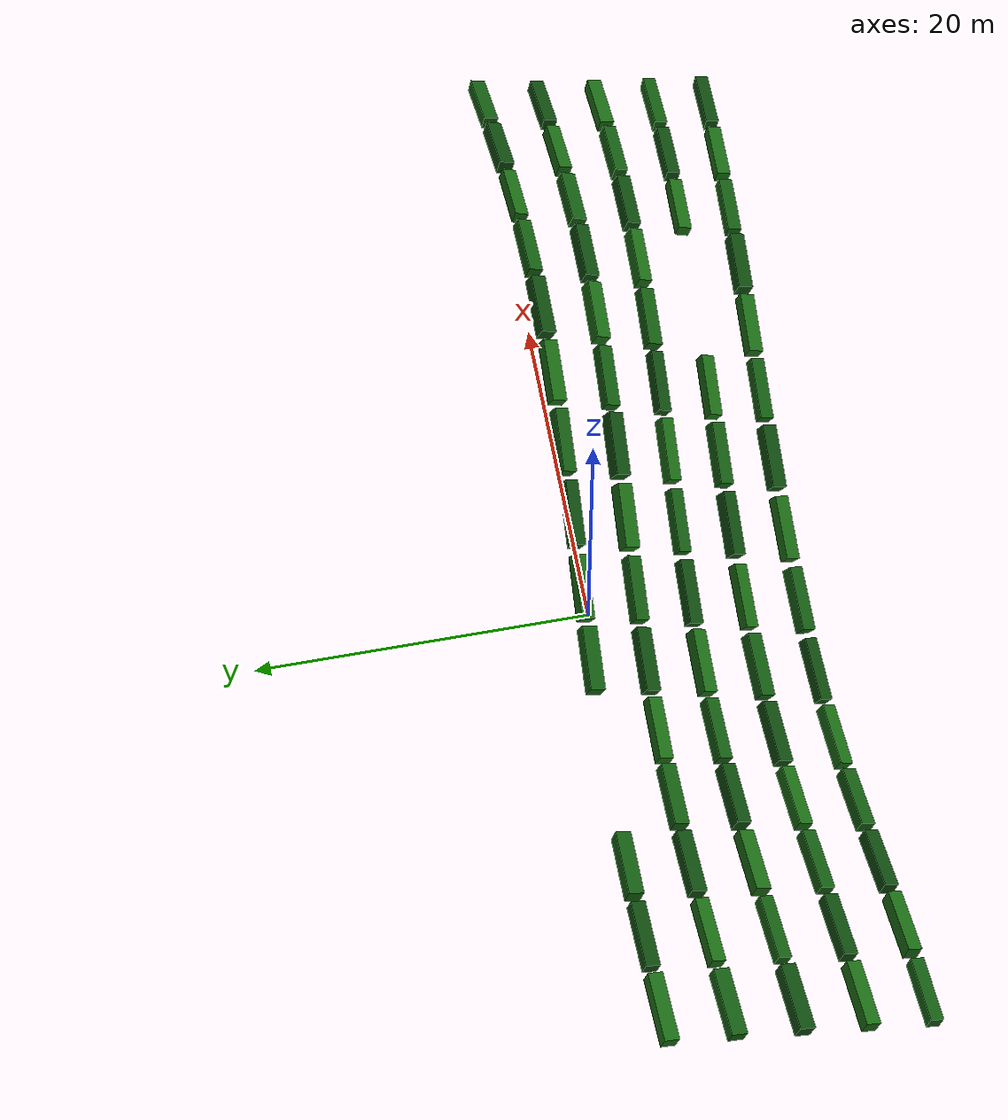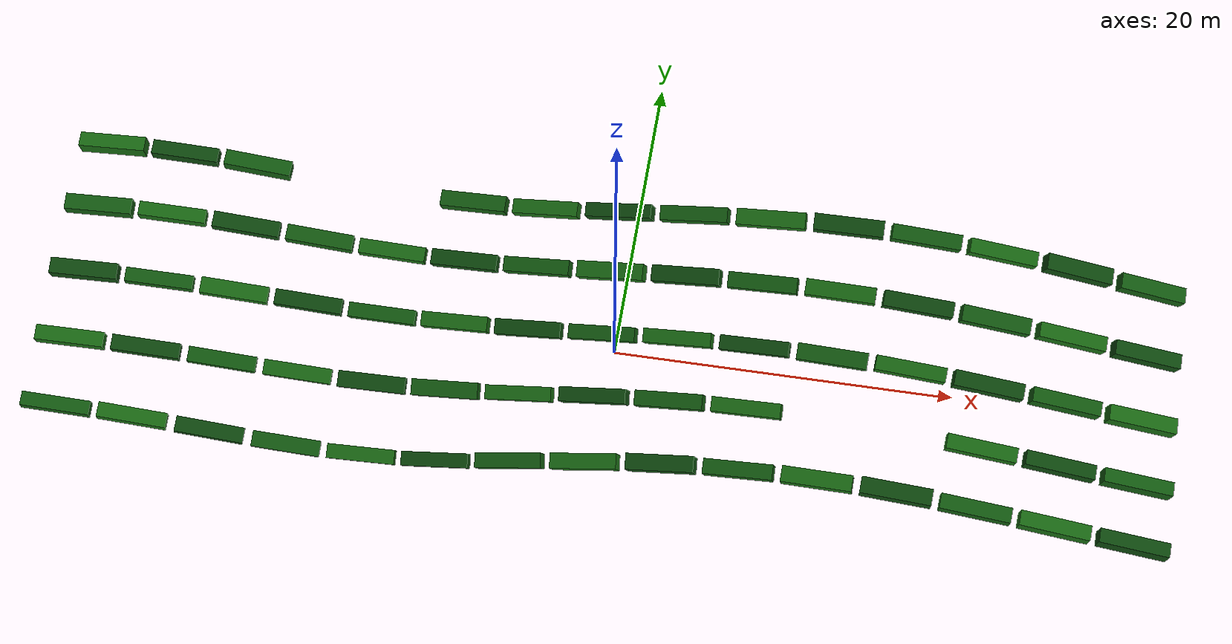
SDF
<sdf version="1.6">
 <world name="mountain_tea_garden_80m">
  <model name="tea_row_04">
   <static>true</static>
   <link name="bush_00">
    <pose>-29 -12.6174 7.43302 0.305582 0.109282 0.0435142</pose>
    <collision name="collision">
     <geometry><box><size>3.75 0.766584 0.74332</size></box></geometry>
     <laser_retro>55</laser_retro>
     <surface><friction><ode><mu>1.15</mu><mu2>1.15</mu2></ode></friction></surface>
    </collision>
    <visual name="visual">
     <geometry><box><size>3.75 0.766584 0.74332</size></box></geometry>
     <material>
      <ambient>0.075 0.36 0.065 1</ambient>
      <diffuse>0.075 0.36 0.065 1</diffuse>
      <specular>0.05 0.05 0.05 1</specular>
     </material>
    </visual>
   </link>
   <link name="bush_01">
    <pose>-24.85 -12.4072 6.91401 0.344056 0.174651 0.0565617</pose>
    <collision name="collision">
     <geometry><box><size>3.75 0.810689 0.898538</size></box></geometry>
     <laser_retro>55</laser_retro>
     <surface><friction><ode><mu>1.15</mu><mu2>1.15</mu2></ode></friction></surface>
    </collision>
    <visual name="visual">
     <geometry><box><size>3.75 0.810689 0.898538</size></box></geometry>
     <material>
      <ambient>0.1 0.42 0.075 1</ambient>
      <diffuse>0.1 0.42 0.075 1</diffuse>
      <specular>0.05 0.05 0.05 1</specular>
     </material>
    </visual>
   </link>
   <link name="bush_02">
    <pose>-20.7 -12.1575 6.05709 0.396059 0.207144 0.0623276</pose>
    <collision name="collision">
     <geometry><box><size>3.75 0.842947 0.834821</size></box></geometry>
     <laser_retro>55</laser_retro>
     <surface><friction><ode><mu>1.15</mu><mu2>1.15</mu2></ode></friction></surface>
    </collision>
    <visual name="visual">
     <geometry><box><size>3.75 0.842947 0.834821</size></box></geometry>
     <material>
      <ambient>0.055 0.29 0.055 1</ambient>
      <diffuse>0.055 0.29 0.055 1</diffuse>
      <specular>0.05 0.05 0.05 1</specular>
     </material>
    </visual>
   </link>
   <link name="bush_03">
    <pose>-16.55 -11.9004 5.22984 0.446021 0.159475 0.060083</pose>
    <collision name="collision">
     <geometry><box><size>3.75 0.8618 0.790554</size></box></geometry>
     <laser_retro>55</laser_retro>
     <surface><friction><ode><mu>1.15</mu><mu2>1.15</mu2></ode></friction></surface>
    </collision>
    <visual name="visual">
     <geometry><box><size>3.75 0.8618 0.790554</size></box></geometry>
     <material>
      <ambient>0.075 0.36 0.065 1</ambient>
      <diffuse>0.075 0.36 0.065 1</diffuse>
      <specular>0.05 0.05 0.05 1</specular>
     </material>
    </visual>
   </link>
   <link name="bush_04">
    <pose>-12.4 -11.669 4.81229 0.474228 0.0256147 0.0501111</pose>
    <collision name="collision">
     <geometry><box><size>3.75 0.792793 0.775226</size></box></geometry>
     <laser_retro>55</laser_retro>
     <surface><friction><ode><mu>1.15</mu><mu2>1.15</mu2></ode></friction></surface>
    </collision>
    <visual name="visual">
     <geometry><box><size>3.75 0.792793 0.775226</size></box></geometry>
     <material>
      <ambient>0.1 0.42 0.075 1</ambient>
      <diffuse>0.1 0.42 0.075 1</diffuse>
      <specular>0.05 0.05 0.05 1</specular>
     </material>
    </visual>
   </link>
   <link name="bush_05">
    <pose>-8.25 -11.4931 5.01506 0.471432 -0.133204 0.0336773</pose>
    <collision name="collision">
     <geometry><box><size>3.75 0.782553 0.71841</size></box></geometry>
     <laser_retro>55</laser_retro>
     <surface><friction><ode><mu>1.15</mu><mu2>1.15</mu2></ode></friction></surface>
    </collision>
    <visual name="visual">
     <geometry><box><size>3.75 0.782553 0.71841</size></box></geometry>
     <material>
      <ambient>0.055 0.29 0.055 1</ambient>
      <diffuse>0.055 0.29 0.055 1</diffuse>
      <specular>0.05 0.05 0.05 1</specular>
     </material>
    </visual>
   </link>
   <link name="bush_06">
    <pose>-4.1 -11.3954 5.88602 0.445157 -0.237608 0.0128864</pose>
    <collision name="collision">
     <geometry><box><size>3.75 0.819698 0.844646</size></box></geometry>
     <laser_retro>55</laser_retro>
     <surface><friction><ode><mu>1.15</mu><mu2>1.15</mu2></ode></friction></surface>
    </collision>
    <visual name="visual">
     <geometry><box><size>3.75 0.819698 0.844646</size></box></geometry>
     <material>
      <ambient>0.075 0.36 0.065 1</ambient>
      <diffuse>0.075 0.36 0.065 1</diffuse>
      <specular>0.05 0.05 0.05 1</specular>
     </material>
    </visual>
   </link>
   <link name="bush_07">
    <pose>0.05 -11.3885 6.92263 0.412634 -0.261757 -0.00957563</pose>
    <collision name="collision">
     <geometry><box><size>3.75 0.843659 0.745857</size></box></geometry>
     <laser_retro>55</laser_retro>
     <surface><friction><ode><mu>1.15</mu><mu2>1.15</mu2></ode></friction></surface>
    </collision>
    <visual name="visual">
     <geometry><box><size>3.75 0.843659 0.745857</size></box></geometry>
     <material>
      <ambient>0.1 0.42 0.075 1</ambient>
      <diffuse>0.1 0.42 0.075 1</diffuse>
      <specular>0.05 0.05 0.05 1</specular>
     </material>
    </visual>
   </link>
   <link name="bush_08">
    <pose>4.2 -11.4732 8.00346 0.386311 -0.225794 -0.0307957</pose>
    <collision name="collision">
     <geometry><box><size>3.75 0.877888 0.809632</size></box></geometry>
     <laser_retro>55</laser_retro>
     <surface><friction><ode><mu>1.15</mu><mu2>1.15</mu2></ode></friction></surface>
    </collision>
    <visual name="visual">
     <geometry><box><size>3.75 0.877888 0.809632</size></box></geometry>
     <material>
      <ambient>0.055 0.29 0.055 1</ambient>
      <diffuse>0.055 0.29 0.055 1</diffuse>
      <specular>0.05 0.05 0.05 1</specular>
     </material>
    </visual>
   </link>
   <link name="bush_09">
    <pose>8.35 -11.6386 8.77087 0.365482 -0.159347 -0.0480296</pose>
    <collision name="collision">
     <geometry><box><size>3.75 0.814928 0.711231</size></box></geometry>
     <laser_retro>55</laser_retro>
     <surface><friction><ode><mu>1.15</mu><mu2>1.15</mu2></ode></friction></surface>
    </collision>
    <visual name="visual">
     <geometry><box><size>3.75 0.814928 0.711231</size></box></geometry>
     <material>
      <ambient>0.075 0.36 0.065 1</ambient>
      <diffuse>0.075 0.36 0.065 1</diffuse>
      <specular>0.05 0.05 0.05 1</specular>
     </material>
    </visual>
   </link>
   <link name="bush_10">
    <pose>12.5 -11.8635 9.30513 0.341509 -0.0831501 -0.059067</pose>
    <collision name="collision">
     <geometry><box><size>3.75 0.860232 0.764457</size></box></geometry>
     <laser_retro>55</laser_retro>
     <surface><friction><ode><mu>1.15</mu><mu2>1.15</mu2></ode></friction></surface>
    </collision>
    <visual name="visual">
     <geometry><box><size>3.75 0.860232 0.764457</size></box></geometry>
     <material>
      <ambient>0.1 0.42 0.075 1</ambient>
      <diffuse>0.1 0.42 0.075 1</diffuse>
      <specular>0.05 0.05 0.05 1</specular>
     </material>
    </visual>
   </link>
   <link name="bush_11">
    <pose>16.65 -12.1189 9.55475 0.307985 -0.0087749 -0.0625056</pose>
    <collision name="collision">
     <geometry><box><size>3.75 0.882073 0.885307</size></box></geometry>
     <laser_retro>55</laser_retro>
     <surface><friction><ode><mu>1.15</mu><mu2>1.15</mu2></ode></friction></surface>
    </collision>
    <visual name="visual">
     <geometry><box><size>3.75 0.882073 0.885307</size></box></geometry>
     <material>
      <ambient>0.055 0.29 0.055 1</ambient>
      <diffuse>0.055 0.29 0.055 1</diffuse>
      <specular>0.05 0.05 0.05 1</specular>
     </material>
    </visual>
   </link>
   <link name="bush_12">
    <pose>20.8 -12.3718 9.36862 0.265576 0.0556531 -0.0579112</pose>
    <collision name="collision">
     <geometry><box><size>3.75 0.815526 0.71751</size></box></geometry>
     <laser_retro>55</laser_retro>
     <surface><friction><ode><mu>1.15</mu><mu2>1.15</mu2></ode></friction></surface>
    </collision>
    <visual name="visual">
     <geometry><box><size>3.75 0.815526 0.71751</size></box></geometry>
     <material>
      <ambient>0.075 0.36 0.065 1</ambient>
      <diffuse>0.075 0.36 0.065 1</diffuse>
      <specular>0.05 0.05 0.05 1</specular>
     </material>
    </visual>
   </link>
   <link name="bush_13">
    <pose>24.95 -12.5897 9.05079 0.220553 0.103441 -0.0458643</pose>
    <collision name="collision">
     <geometry><box><size>3.75 0.816914 0.757991</size></box></geometry>
     <laser_retro>55</laser_retro>
     <surface><friction><ode><mu>1.15</mu><mu2>1.15</mu2></ode></friction></surface>
    </collision>
    <visual name="visual">
     <geometry><box><size>3.75 0.816914 0.757991</size></box></geometry>
     <material>
      <ambient>0.1 0.42 0.075 1</ambient>
      <diffuse>0.1 0.42 0.075 1</diffuse>
      <specular>0.05 0.05 0.05 1</specular>
     </material>
    </visual>
   </link>
   <link name="bush_14">
    <pose>29.1 -12.7445 8.59119 0.180692 0.130278 -0.0278974</pose>
    <collision name="collision">
     <geometry><box><size>3.75 0.771189 0.829505</size></box></geometry>
     <laser_retro>55</laser_retro>
     <surface><friction><ode><mu>1.15</mu><mu2>1.15</mu2></ode></friction></surface>
    </collision>
    <visual name="visual">
     <geometry><box><size>3.75 0.771189 0.829505</size></box></geometry>
     <material>
      <ambient>0.055 0.29 0.055 1</ambient>
      <diffuse>0.055 0.29 0.055 1</diffuse>
      <specular>0.05 0.05 0.05 1</specular>
     </material>
    </visual>
   </link>
  </model>
  <model name="tea_row_05">
   <static>true</static>
   <link name="bush_00">
    <pose>-29 -9.01153 8.66435 0.332981 0.0763519 0.0582663</pose>
    <collision name="collision">
     <geometry><box><size>3.75 0.828919 0.834383</size></box></geometry>
     <laser_retro>55</laser_retro>
     <surface><friction><ode><mu>1.15</mu><mu2>1.15</mu2></ode></friction></surface>
    </collision>
    <visual name="visual">
     <geometry><box><size>3.75 0.828919 0.834383</size></box></geometry>
     <material>
      <ambient>0.1 0.42 0.075 1</ambient>
      <diffuse>0.1 0.42 0.075 1</diffuse>
      <specular>0.05 0.05 0.05 1</specular>
     </material>
    </visual>
   </link>
   <link name="bush_01">
    <pose>-24.85 -8.75783 8.21373 0.373006 0.130674 0.0625234</pose>
    <collision name="collision">
     <geometry><box><size>3.75 0.838566 0.80109</size></box></geometry>
     <laser_retro>55</laser_retro>
     <surface><friction><ode><mu>1.15</mu><mu2>1.15</mu2></ode></friction></surface>
    </collision>
    <visual name="visual">
     <geometry><box><size>3.75 0.838566 0.80109</size></box></geometry>
     <material>
      <ambient>0.055 0.29 0.055 1</ambient>
      <diffuse>0.055 0.29 0.055 1</diffuse>
      <specular>0.05 0.05 0.05 1</specular>
     </material>
    </visual>
   </link>
   <link name="bush_02">
    <pose>-20.7 -8.50311 7.57428 0.41719 0.157665 0.0587452</pose>
    <collision name="collision">
     <geometry><box><size>3.75 0.828921 0.764522</size></box></geometry>
     <laser_retro>55</laser_retro>
     <surface><friction><ode><mu>1.15</mu><mu2>1.15</mu2></ode></friction></surface>
    </collision>
    <visual name="visual">
     <geometry><box><size>3.75 0.828921 0.764522</size></box></geometry>
     <material>
      <ambient>0.075 0.36 0.065 1</ambient>
      <diffuse>0.075 0.36 0.065 1</diffuse>
      <specular>0.05 0.05 0.05 1</specular>
     </material>
    </visual>
   </link>
   <link name="bush_03">
    <pose>-16.55 -8.28021 6.96298 0.455793 0.12025 0.047409</pose>
    <collision name="collision">
     <geometry><box><size>3.75 0.829983 0.757244</size></box></geometry>
     <laser_retro>55</laser_retro>
     <surface><friction><ode><mu>1.15</mu><mu2>1.15</mu2></ode></friction></surface>
    </collision>
    <visual name="visual">
     <geometry><box><size>3.75 0.829983 0.757244</size></box></geometry>
     <material>
      <ambient>0.1 0.42 0.075 1</ambient>
      <diffuse>0.1 0.42 0.075 1</diffuse>
      <specular>0.05 0.05 0.05 1</specular>
     </material>
    </visual>
   </link>
   <link name="bush_04">
    <pose>-12.4 -8.11782 6.65427 0.479019 0.0166306 0.0299554</pose>
    <collision name="collision">
     <geometry><box><size>3.75 0.893402 0.745273</size></box></geometry>
     <laser_retro>55</laser_retro>
     <surface><friction><ode><mu>1.15</mu><mu2>1.15</mu2></ode></friction></surface>
    </collision>
    <visual name="visual">
     <geometry><box><size>3.75 0.893402 0.745273</size></box></geometry>
     <material>
      <ambient>0.055 0.29 0.055 1</ambient>
      <diffuse>0.055 0.29 0.055 1</diffuse>
      <specular>0.05 0.05 0.05 1</specular>
     </material>
    </visual>
   </link>
   <link name="bush_05">
    <pose>-8.25 -8.03686 6.86164 0.482901 -0.108174 0.00862402</pose>
    <collision name="collision">
     <geometry><box><size>3.75 0.892415 0.772042</size></box></geometry>
     <laser_retro>55</laser_retro>
     <surface><friction><ode><mu>1.15</mu><mu2>1.15</mu2></ode></friction></surface>
    </collision>
    <visual name="visual">
     <geometry><box><size>3.75 0.892415 0.772042</size></box></geometry>
     <material>
      <ambient>0.075 0.36 0.065 1</ambient>
      <diffuse>0.075 0.36 0.065 1</diffuse>
      <specular>0.05 0.05 0.05 1</specular>
     </material>
    </visual>
   </link>
   <link name="bush_06">
    <pose>-4.1 -8.04778 7.49528 0.472052 -0.197066 -0.013826</pose>
    <collision name="collision">
     <geometry><box><size>3.75 0.778742 0.721932</size></box></geometry>
     <laser_retro>55</laser_retro>
     <surface><friction><ode><mu>1.15</mu><mu2>1.15</mu2></ode></friction></surface>
    </collision>
    <visual name="visual">
     <geometry><box><size>3.75 0.778742 0.721932</size></box></geometry>
     <material>
      <ambient>0.1 0.42 0.075 1</ambient>
      <diffuse>0.1 0.42 0.075 1</diffuse>
      <specular>0.05 0.05 0.05 1</specular>
     </material>
    </visual>
   </link>
   <link name="bush_07">
    <pose>0.05 -8.14915 8.49277 0.455843 -0.224978 -0.0344832</pose>
    <collision name="collision">
     <geometry><box><size>3.75 0.783647 0.89375</size></box></geometry>
     <laser_retro>55</laser_retro>
     <surface><friction><ode><mu>1.15</mu><mu2>1.15</mu2></ode></friction></surface>
    </collision>
    <visual name="visual">
     <geometry><box><size>3.75 0.783647 0.89375</size></box></geometry>
     <material>
      <ambient>0.055 0.29 0.055 1</ambient>
      <diffuse>0.055 0.29 0.055 1</diffuse>
      <specular>0.05 0.05 0.05 1</specular>
     </material>
    </visual>
   </link>
   <link name="bush_08">
    <pose>4.2 -8.32793 9.35848 0.440188 -0.199049 -0.0506795</pose>
    <collision name="collision">
     <geometry><box><size>3.75 0.824155 0.804143</size></box></geometry>
     <laser_retro>55</laser_retro>
     <surface><friction><ode><mu>1.15</mu><mu2>1.15</mu2></ode></friction></surface>
    </collision>
    <visual name="visual">
     <geometry><box><size>3.75 0.824155 0.804143</size></box></geometry>
     <material>
      <ambient>0.075 0.36 0.065 1</ambient>
      <diffuse>0.075 0.36 0.065 1</diffuse>
      <specular>0.05 0.05 0.05 1</specular>
     </material>
    </visual>
   </link>
   <link name="bush_09">
    <pose>8.35 -8.56107 10.0421 0.42292 -0.137972 -0.0603415</pose>
    <collision name="collision">
     <geometry><box><size>3.75 0.780971 0.738457</size></box></geometry>
     <laser_retro>55</laser_retro>
     <surface><friction><ode><mu>1.15</mu><mu2>1.15</mu2></ode></friction></surface>
    </collision>
    <visual name="visual">
     <geometry><box><size>3.75 0.780971 0.738457</size></box></geometry>
     <material>
      <ambient>0.1 0.42 0.075 1</ambient>
      <diffuse>0.1 0.42 0.075 1</diffuse>
      <specular>0.05 0.05 0.05 1</specular>
     </material>
    </visual>
   </link>
   <link name="bush_12">
    <pose>20.8 -9.275 10.2963 0.311186 0.0890776 -0.0428192</pose>
    <collision name="collision">
     <geometry><box><size>3.75 0.8097 0.718613</size></box></geometry>
     <laser_retro>55</laser_retro>
     <surface><friction><ode><mu>1.15</mu><mu2>1.15</mu2></ode></friction></surface>
    </collision>
    <visual name="visual">
     <geometry><box><size>3.75 0.8097 0.718613</size></box></geometry>
     <material>
      <ambient>0.1 0.42 0.075 1</ambient>
      <diffuse>0.1 0.42 0.075 1</diffuse>
      <specular>0.05 0.05 0.05 1</specular>
     </material>
    </visual>
   </link>
   <link name="bush_13">
    <pose>24.95 -9.41516 9.85978 0.258136 0.137578 -0.0239619</pose>
    <collision name="collision">
     <geometry><box><size>3.75 0.788365 0.807719</size></box></geometry>
     <laser_retro>55</laser_retro>
     <surface><friction><ode><mu>1.15</mu><mu2>1.15</mu2></ode></friction></surface>
    </collision>
    <visual name="visual">
     <geometry><box><size>3.75 0.788365 0.807719</size></box></geometry>
     <material>
      <ambient>0.055 0.29 0.055 1</ambient>
      <diffuse>0.055 0.29 0.055 1</diffuse>
      <specular>0.05 0.05 0.05 1</specular>
     </material>
    </visual>
   </link>
   <link name="bush_14">
    <pose>29.1 -9.46963 9.24359 0.208087 0.160477 -0.00200027</pose>
    <collision name="collision">
     <geometry><box><size>3.75 0.760202 0.840672</size></box></geometry>
     <laser_retro>55</laser_retro>
     <surface><friction><ode><mu>1.15</mu><mu2>1.15</mu2></ode></friction></surface>
    </collision>
    <visual name="visual">
     <geometry><box><size>3.75 0.760202 0.840672</size></box></geometry>
     <material>
      <ambient>0.075 0.36 0.065 1</ambient>
      <diffuse>0.075 0.36 0.065 1</diffuse>
      <specular>0.05 0.05 0.05 1</specular>
     </material>
    </visual>
   </link>
  </model>
  <model name="tea_row_06">
   <static>true</static>
   <link name="bush_00">
    <pose>-29 -5.35808 9.92413 0.32508 0.0426114 0.0624213</pose>
    <collision name="collision">
     <geometry><box><size>3.75 0.88708 0.868074</size></box></geometry>
     <laser_retro>55</laser_retro>
     <surface><friction><ode><mu>1.15</mu><mu2>1.15</mu2></ode></friction></surface>
    </collision>
    <visual name="visual">
     <geometry><box><size>3.75 0.88708 0.868074</size></box></geometry>
     <material>
      <ambient>0.055 0.29 0.055 1</ambient>
      <diffuse>0.055 0.29 0.055 1</diffuse>
      <specular>0.05 0.05 0.05 1</specular>
     </material>
    </visual>
   </link>
   <link name="bush_01">
    <pose>-24.85 -5.10698 9.56713 0.361047 0.0961348 0.0571273</pose>
    <collision name="collision">
     <geometry><box><size>3.75 0.778398 0.733192</size></box></geometry>
     <laser_retro>55</laser_retro>
     <surface><friction><ode><mu>1.15</mu><mu2>1.15</mu2></ode></friction></surface>
    </collision>
    <visual name="visual">
     <geometry><box><size>3.75 0.778398 0.733192</size></box></geometry>
     <material>
      <ambient>0.075 0.36 0.065 1</ambient>
      <diffuse>0.075 0.36 0.065 1</diffuse>
      <specular>0.05 0.05 0.05 1</specular>
     </material>
    </visual>
   </link>
   <link name="bush_02">
    <pose>-20.7 -4.89364 9.09686 0.392419 0.126406 0.04448</pose>
    <collision name="collision">
     <geometry><box><size>3.75 0.891198 0.75271</size></box></geometry>
     <laser_retro>55</laser_retro>
     <surface><friction><ode><mu>1.15</mu><mu2>1.15</mu2></ode></friction></surface>
    </collision>
    <visual name="visual">
     <geometry><box><size>3.75 0.891198 0.75271</size></box></geometry>
     <material>
      <ambient>0.1 0.42 0.075 1</ambient>
      <diffuse>0.1 0.42 0.075 1</diffuse>
      <specular>0.05 0.05 0.05 1</specular>
     </material>
    </visual>
   </link>
   <link name="bush_03">
    <pose>-16.55 -4.74552 8.66856 0.417419 0.0984729 0.0260896</pose>
    <collision name="collision">
     <geometry><box><size>3.75 0.846375 0.880867</size></box></geometry>
     <laser_retro>55</laser_retro>
     <surface><friction><ode><mu>1.15</mu><mu2>1.15</mu2></ode></friction></surface>
    </collision>
    <visual name="visual">
     <geometry><box><size>3.75 0.846375 0.880867</size></box></geometry>
     <material>
      <ambient>0.055 0.29 0.055 1</ambient>
      <diffuse>0.055 0.29 0.055 1</diffuse>
      <specular>0.05 0.05 0.05 1</specular>
     </material>
    </visual>
   </link>
   <link name="bush_04">
    <pose>-12.4 -4.68172 8.37453 0.437177 0.0114922 0.00432012</pose>
    <collision name="collision">
     <geometry><box><size>3.75 0.796453 0.781668</size></box></geometry>
     <laser_retro>55</laser_retro>
     <surface><friction><ode><mu>1.15</mu><mu2>1.15</mu2></ode></friction></surface>
    </collision>
    <visual name="visual">
     <geometry><box><size>3.75 0.796453 0.781668</size></box></geometry>
     <material>
      <ambient>0.075 0.36 0.065 1</ambient>
      <diffuse>0.075 0.36 0.065 1</diffuse>
      <specular>0.05 0.05 0.05 1</specular>
     </material>
    </visual>
   </link>
   <link name="bush_05">
    <pose>-8.25 -4.71044 8.58554 0.452339 -0.0964584 -0.0180099</pose>
    <collision name="collision">
     <geometry><box><size>3.75 0.814239 0.847049</size></box></geometry>
     <laser_retro>55</laser_retro>
     <surface><friction><ode><mu>1.15</mu><mu2>1.15</mu2></ode></friction></surface>
    </collision>
    <visual name="visual">
     <geometry><box><size>3.75 0.814239 0.847049</size></box></geometry>
     <material>
      <ambient>0.1 0.42 0.075 1</ambient>
      <diffuse>0.1 0.42 0.075 1</diffuse>
      <specular>0.05 0.05 0.05 1</specular>
     </material>
    </visual>
   </link>
   <link name="bush_06">
    <pose>-4.1 -4.82799 9.10343 0.462746 -0.177779 -0.0380052</pose>
    <collision name="collision">
     <geometry><box><size>3.75 0.845128 0.704892</size></box></geometry>
     <laser_retro>55</laser_retro>
     <surface><friction><ode><mu>1.15</mu><mu2>1.15</mu2></ode></friction></surface>
    </collision>
    <visual name="visual">
     <geometry><box><size>3.75 0.845128 0.704892</size></box></geometry>
     <material>
      <ambient>0.055 0.29 0.055 1</ambient>
      <diffuse>0.055 0.29 0.055 1</diffuse>
      <specular>0.05 0.05 0.05 1</specular>
     </material>
    </visual>
   </link>
   <link name="bush_07">
    <pose>0.05 -5.01923 9.93176 0.468531 -0.207698 -0.053087</pose>
    <collision name="collision">
     <geometry><box><size>3.75 0.777758 0.700383</size></box></geometry>
     <laser_retro>55</laser_retro>
     <surface><friction><ode><mu>1.15</mu><mu2>1.15</mu2></ode></friction></surface>
    </collision>
    <visual name="visual">
     <geometry><box><size>3.75 0.777758 0.700383</size></box></geometry>
     <material>
      <ambient>0.075 0.36 0.065 1</ambient>
      <diffuse>0.075 0.36 0.065 1</diffuse>
      <specular>0.05 0.05 0.05 1</specular>
     </material>
    </visual>
   </link>
   <link name="bush_08">
    <pose>4.2 -5.25952 10.8222 0.46892 -0.186227 -0.0613284</pose>
    <collision name="collision">
     <geometry><box><size>3.75 0.76028 0.78855</size></box></geometry>
     <laser_retro>55</laser_retro>
     <surface><friction><ode><mu>1.15</mu><mu2>1.15</mu2></ode></friction></surface>
    </collision>
    <visual name="visual">
     <geometry><box><size>3.75 0.76028 0.78855</size></box></geometry>
     <material>
      <ambient>0.1 0.42 0.075 1</ambient>
      <diffuse>0.1 0.42 0.075 1</diffuse>
      <specular>0.05 0.05 0.05 1</specular>
     </material>
    </visual>
   </link>
   <link name="bush_09">
    <pose>8.35 -5.5179 11.4477 0.460706 -0.125302 -0.0616852</pose>
    <collision name="collision">
     <geometry><box><size>3.75 0.775913 0.71056</size></box></geometry>
     <laser_retro>55</laser_retro>
     <surface><friction><ode><mu>1.15</mu><mu2>1.15</mu2></ode></friction></surface>
    </collision>
    <visual name="visual">
     <geometry><box><size>3.75 0.775913 0.71056</size></box></geometry>
     <material>
      <ambient>0.055 0.29 0.055 1</ambient>
      <diffuse>0.055 0.29 0.055 1</diffuse>
      <specular>0.05 0.05 0.05 1</specular>
     </material>
    </visual>
   </link>
   <link name="bush_10">
    <pose>12.5 -5.7611 11.8087 0.439812 -0.0410985 -0.0541125</pose>
    <collision name="collision">
     <geometry><box><size>3.75 0.873504 0.728673</size></box></geometry>
     <laser_retro>55</laser_retro>
     <surface><friction><ode><mu>1.15</mu><mu2>1.15</mu2></ode></friction></surface>
    </collision>
    <visual name="visual">
     <geometry><box><size>3.75 0.873504 0.728673</size></box></geometry>
     <material>
      <ambient>0.075 0.36 0.065 1</ambient>
      <diffuse>0.075 0.36 0.065 1</diffuse>
      <specular>0.05 0.05 0.05 1</specular>
     </material>
    </visual>
   </link>
   <link name="bush_11">
    <pose>16.65 -5.95778 11.8665 0.404523 0.0483787 -0.039569</pose>
    <collision name="collision">
     <geometry><box><size>3.75 0.779645 0.877191</size></box></geometry>
     <laser_retro>55</laser_retro>
     <surface><friction><ode><mu>1.15</mu><mu2>1.15</mu2></ode></friction></surface>
    </collision>
    <visual name="visual">
     <geometry><box><size>3.75 0.779645 0.877191</size></box></geometry>
     <material>
      <ambient>0.1 0.42 0.075 1</ambient>
      <diffuse>0.1 0.42 0.075 1</diffuse>
      <specular>0.05 0.05 0.05 1</specular>
     </material>
    </visual>
   </link>
   <link name="bush_12">
    <pose>20.8 -6.08261 11.4912 0.357088 0.125834 -0.0199113</pose>
    <collision name="collision">
     <geometry><box><size>3.75 0.844503 0.865688</size></box></geometry>
     <laser_retro>55</laser_retro>
     <surface><friction><ode><mu>1.15</mu><mu2>1.15</mu2></ode></friction></surface>
    </collision>
    <visual name="visual">
     <geometry><box><size>3.75 0.844503 0.865688</size></box></geometry>
     <material>
      <ambient>0.055 0.29 0.055 1</ambient>
      <diffuse>0.055 0.29 0.055 1</diffuse>
      <specular>0.05 0.05 0.05 1</specular>
     </material>
    </visual>
   </link>
   <link name="bush_13">
    <pose>24.95 -6.1195 10.8614 0.302916 0.178391 0.00232702</pose>
    <collision name="collision">
     <geometry><box><size>3.75 0.790623 0.899667</size></box></geometry>
     <laser_retro>55</laser_retro>
     <surface><friction><ode><mu>1.15</mu><mu2>1.15</mu2></ode></friction></surface>
    </collision>
    <visual name="visual">
     <geometry><box><size>3.75 0.790623 0.899667</size></box></geometry>
     <material>
      <ambient>0.075 0.36 0.065 1</ambient>
      <diffuse>0.075 0.36 0.065 1</diffuse>
      <specular>0.05 0.05 0.05 1</specular>
     </material>
    </visual>
   </link>
   <link name="bush_14">
    <pose>29.1 -6.06371 10.0111 0.248599 0.199638 0.0242635</pose>
    <collision name="collision">
     <geometry><box><size>3.75 0.859932 0.810353</size></box></geometry>
     <laser_retro>55</laser_retro>
     <surface><friction><ode><mu>1.15</mu><mu2>1.15</mu2></ode></friction></surface>
    </collision>
    <visual name="visual">
     <geometry><box><size>3.75 0.859932 0.810353</size></box></geometry>
     <material>
      <ambient>0.1 0.42 0.075 1</ambient>
      <diffuse>0.1 0.42 0.075 1</diffuse>
      <specular>0.05 0.05 0.05 1</specular>
     </material>
    </visual>
   </link>
  </model>
  <model name="tea_row_07">
   <static>true</static>
   <link name="bush_00">
    <pose>-29 -1.71225 11.0367 0.289131 0.0118013 0.0552366</pose>
    <collision name="collision">
     <geometry><box><size>3.75 0.893398 0.780757</size></box></geometry>
     <laser_retro>55</laser_retro>
     <surface><friction><ode><mu>1.15</mu><mu2>1.15</mu2></ode></friction></surface>
    </collision>
    <visual name="visual">
     <geometry><box><size>3.75 0.893398 0.780757</size></box></geometry>
     <material>
      <ambient>0.075 0.36 0.065 1</ambient>
      <diffuse>0.075 0.36 0.065 1</diffuse>
      <specular>0.05 0.05 0.05 1</specular>
     </material>
    </visual>
   </link>
   <link name="bush_01">
    <pose>-24.85 -1.50949 10.8599 0.323058 0.0724701 0.041338</pose>
    <collision name="collision">
     <geometry><box><size>3.75 0.786339 0.77598</size></box></geometry>
     <laser_retro>55</laser_retro>
     <surface><friction><ode><mu>1.15</mu><mu2>1.15</mu2></ode></friction></surface>
    </collision>
    <visual name="visual">
     <geometry><box><size>3.75 0.786339 0.77598</size></box></geometry>
     <material>
      <ambient>0.1 0.42 0.075 1</ambient>
      <diffuse>0.1 0.42 0.075 1</diffuse>
      <specular>0.05 0.05 0.05 1</specular>
     </material>
    </visual>
   </link>
   <link name="bush_02">
    <pose>-20.7 -1.37636 10.4549 0.347021 0.110837 0.0220985</pose>
    <collision name="collision">
     <geometry><box><size>3.75 0.87472 0.761862</size></box></geometry>
     <laser_retro>55</laser_retro>
     <surface><friction><ode><mu>1.15</mu><mu2>1.15</mu2></ode></friction></surface>
    </collision>
    <visual name="visual">
     <geometry><box><size>3.75 0.87472 0.761862</size></box></geometry>
     <material>
      <ambient>0.055 0.29 0.055 1</ambient>
      <diffuse>0.055 0.29 0.055 1</diffuse>
      <specular>0.05 0.05 0.05 1</specular>
     </material>
    </visual>
   </link>
   <link name="bush_03">
    <pose>-16.55 -1.33 10.0345 0.364678 0.0882683 -4.58536e-06</pose>
    <collision name="collision">
     <geometry><box><size>3.75 0.860634 0.798972</size></box></geometry>
     <laser_retro>55</laser_retro>
     <surface><friction><ode><mu>1.15</mu><mu2>1.15</mu2></ode></friction></surface>
    </collision>
    <visual name="visual">
     <geometry><box><size>3.75 0.860634 0.798972</size></box></geometry>
     <material>
      <ambient>0.075 0.36 0.065 1</ambient>
      <diffuse>0.075 0.36 0.065 1</diffuse>
      <specular>0.05 0.05 0.05 1</specular>
     </material>
    </visual>
   </link>
   <link name="bush_04">
    <pose>-12.4 -1.37639 9.78922 0.384284 0.0047952 -0.0221071</pose>
    <collision name="collision">
     <geometry><box><size>3.75 0.817596 0.727354</size></box></geometry>
     <laser_retro>55</laser_retro>
     <surface><friction><ode><mu>1.15</mu><mu2>1.15</mu2></ode></friction></surface>
    </collision>
    <visual name="visual">
     <geometry><box><size>3.75 0.817596 0.727354</size></box></geometry>
     <material>
      <ambient>0.1 0.42 0.075 1</ambient>
      <diffuse>0.1 0.42 0.075 1</diffuse>
      <specular>0.05 0.05 0.05 1</specular>
     </material>
    </visual>
   </link>
   <link name="bush_05">
    <pose>-8.25 -1.50956 10.0025 0.40909 -0.100435 -0.0413449</pose>
    <collision name="collision">
     <geometry><box><size>3.75 0.864382 0.753379</size></box></geometry>
     <laser_retro>55</laser_retro>
     <surface><friction><ode><mu>1.15</mu><mu2>1.15</mu2></ode></friction></surface>
    </collision>
    <visual name="visual">
     <geometry><box><size>3.75 0.864382 0.753379</size></box></geometry>
     <material>
      <ambient>0.055 0.29 0.055 1</ambient>
      <diffuse>0.055 0.29 0.055 1</diffuse>
      <specular>0.05 0.05 0.05 1</specular>
     </material>
    </visual>
   </link>
   <link name="bush_06">
    <pose>-4.1 -1.71235 10.6348 0.435285 -0.18089 -0.0552409</pose>
    <collision name="collision">
     <geometry><box><size>3.75 0.818294 0.810696</size></box></geometry>
     <laser_retro>55</laser_retro>
     <surface><friction><ode><mu>1.15</mu><mu2>1.15</mu2></ode></friction></surface>
    </collision>
    <visual name="visual">
     <geometry><box><size>3.75 0.818294 0.810696</size></box></geometry>
     <material>
      <ambient>0.075 0.36 0.065 1</ambient>
      <diffuse>0.075 0.36 0.065 1</diffuse>
      <specular>0.05 0.05 0.05 1</specular>
     </material>
    </visual>
   </link>
   <link name="bush_07">
    <pose>0.05 -1.95863 11.4937 0.456974 -0.211851 -0.0620229</pose>
    <collision name="collision">
     <geometry><box><size>3.75 0.891327 0.835557</size></box></geometry>
     <laser_retro>55</laser_retro>
     <surface><friction><ode><mu>1.15</mu><mu2>1.15</mu2></ode></friction></surface>
    </collision>
    <visual name="visual">
     <geometry><box><size>3.75 0.891327 0.835557</size></box></geometry>
     <material>
      <ambient>0.1 0.42 0.075 1</ambient>
      <diffuse>0.1 0.42 0.075 1</diffuse>
      <specular>0.05 0.05 0.05 1</specular>
     </material>
    </visual>
   </link>
   <link name="bush_08">
    <pose>4.2 -2.21668 12.38 0.469585 -0.190513 -0.0608327</pose>
    <collision name="collision">
     <geometry><box><size>3.75 0.880185 0.876288</size></box></geometry>
     <laser_retro>55</laser_retro>
     <surface><friction><ode><mu>1.15</mu><mu2>1.15</mu2></ode></friction></surface>
    </collision>
    <visual name="visual">
     <geometry><box><size>3.75 0.880185 0.876288</size></box></geometry>
     <material>
      <ambient>0.055 0.29 0.055 1</ambient>
      <diffuse>0.055 0.29 0.055 1</diffuse>
      <specular>0.05 0.05 0.05 1</specular>
     </material>
    </visual>
   </link>
   <link name="bush_09">
    <pose>8.35 -2.45326 12.9785 0.469835 -0.125148 -0.0518206</pose>
    <collision name="collision">
     <geometry><box><size>3.75 0.84759 0.722706</size></box></geometry>
     <laser_retro>55</laser_retro>
     <surface><friction><ode><mu>1.15</mu><mu2>1.15</mu2></ode></friction></surface>
    </collision>
    <visual name="visual">
     <geometry><box><size>3.75 0.84759 0.722706</size></box></geometry>
     <material>
      <ambient>0.075 0.36 0.065 1</ambient>
      <diffuse>0.075 0.36 0.065 1</diffuse>
      <specular>0.05 0.05 0.05 1</specular>
     </material>
    </visual>
   </link>
   <link name="bush_10">
    <pose>12.5 -2.6379 13.3748 0.455671 -0.0306197 -0.036129</pose>
    <collision name="collision">
     <geometry><box><size>3.75 0.854316 0.852704</size></box></geometry>
     <laser_retro>55</laser_retro>
     <surface><friction><ode><mu>1.15</mu><mu2>1.15</mu2></ode></friction></surface>
    </collision>
    <visual name="visual">
     <geometry><box><size>3.75 0.854316 0.852704</size></box></geometry>
     <material>
      <ambient>0.1 0.42 0.075 1</ambient>
      <diffuse>0.1 0.42 0.075 1</diffuse>
      <specular>0.05 0.05 0.05 1</specular>
     </material>
    </visual>
   </link>
   <link name="bush_11">
    <pose>16.65 -2.7468 13.2777 0.427078 0.0724803 -0.015765</pose>
    <collision name="collision">
     <geometry><box><size>3.75 0.848146 0.834257</size></box></geometry>
     <laser_retro>55</laser_retro>
     <surface><friction><ode><mu>1.15</mu><mu2>1.15</mu2></ode></friction></surface>
    </collision>
    <visual name="visual">
     <geometry><box><size>3.75 0.848146 0.834257</size></box></geometry>
     <material>
      <ambient>0.055 0.29 0.055 1</ambient>
      <diffuse>0.055 0.29 0.055 1</diffuse>
      <specular>0.05 0.05 0.05 1</specular>
     </material>
    </visual>
   </link>
   <link name="bush_12">
    <pose>20.8 -2.76594 12.7539 0.386427 0.162055 0.0066431</pose>
    <collision name="collision">
     <geometry><box><size>3.75 0.882619 0.781608</size></box></geometry>
     <laser_retro>55</laser_retro>
     <surface><friction><ode><mu>1.15</mu><mu2>1.15</mu2></ode></friction></surface>
    </collision>
    <visual name="visual">
     <geometry><box><size>3.75 0.882619 0.781608</size></box></geometry>
     <material>
      <ambient>0.075 0.36 0.065 1</ambient>
      <diffuse>0.075 0.36 0.065 1</diffuse>
      <specular>0.05 0.05 0.05 1</specular>
     </material>
    </visual>
   </link>
   <link name="bush_13">
    <pose>24.95 -2.69285 11.9451 0.337931 0.221413 0.0281894</pose>
    <collision name="collision">
     <geometry><box><size>3.75 0.806711 0.801757</size></box></geometry>
     <laser_retro>55</laser_retro>
     <surface><friction><ode><mu>1.15</mu><mu2>1.15</mu2></ode></friction></surface>
    </collision>
    <visual name="visual">
     <geometry><box><size>3.75 0.806711 0.801757</size></box></geometry>
     <material>
      <ambient>0.1 0.42 0.075 1</ambient>
      <diffuse>0.1 0.42 0.075 1</diffuse>
      <specular>0.05 0.05 0.05 1</specular>
     </material>
    </visual>
   </link>
   <link name="bush_14">
    <pose>29.1 -2.53695 10.9366 0.286785 0.242816 0.0460856</pose>
    <collision name="collision">
     <geometry><box><size>3.75 0.819372 0.776898</size></box></geometry>
     <laser_retro>55</laser_retro>
     <surface><friction><ode><mu>1.15</mu><mu2>1.15</mu2></ode></friction></surface>
    </collision>
    <visual name="visual">
     <geometry><box><size>3.75 0.819372 0.776898</size></box></geometry>
     <material>
      <ambient>0.055 0.29 0.055 1</ambient>
      <diffuse>0.055 0.29 0.055 1</diffuse>
      <specular>0.05 0.05 0.05 1</specular>
     </material>
    </visual>
   </link>
  </model>
  <model name="tea_row_08">
   <static>true</static>
   <link name="bush_00">
    <pose>-29 1.87207 12.053 0.236174 -0.0163948 0.0379979</pose>
    <collision name="collision">
     <geometry><box><size>3.75 0.825542 0.879563</size></box></geometry>
     <laser_retro>55</laser_retro>
     <surface><friction><ode><mu>1.15</mu><mu2>1.15</mu2></ode></friction></surface>
    </collision>
    <visual name="visual">
     <geometry><box><size>3.75 0.825542 0.879563</size></box></geometry>
     <material>
      <ambient>0.1 0.42 0.075 1</ambient>
      <diffuse>0.1 0.42 0.075 1</diffuse>
      <specular>0.05 0.05 0.05 1</specular>
     </material>
    </visual>
   </link>
   <link name="bush_01">
    <pose>-24.85 1.98959 11.9222 0.269362 0.0541579 0.0180011</pose>
    <collision name="collision">
     <geometry><box><size>3.75 0.816066 0.770625</size></box></geometry>
     <laser_retro>55</laser_retro>
     <surface><friction><ode><mu>1.15</mu><mu2>1.15</mu2></ode></friction></surface>
    </collision>
    <visual name="visual">
     <geometry><box><size>3.75 0.816066 0.770625</size></box></geometry>
     <material>
      <ambient>0.055 0.29 0.055 1</ambient>
      <diffuse>0.055 0.29 0.055 1</diffuse>
      <specular>0.05 0.05 0.05 1</specular>
     </material>
    </visual>
   </link>
   <link name="bush_02">
    <pose>-20.7 2.01828 11.6313 0.290746 0.101624 -0.00432927</pose>
    <collision name="collision">
     <geometry><box><size>3.75 0.857308 0.872674</size></box></geometry>
     <laser_retro>55</laser_retro>
     <surface><friction><ode><mu>1.15</mu><mu2>1.15</mu2></ode></friction></surface>
    </collision>
    <visual name="visual">
     <geometry><box><size>3.75 0.857308 0.872674</size></box></geometry>
     <material>
      <ambient>0.075 0.36 0.065 1</ambient>
      <diffuse>0.075 0.36 0.065 1</diffuse>
      <specular>0.05 0.05 0.05 1</specular>
     </material>
    </visual>
   </link>
   <link name="bush_05">
    <pose>-8.25 1.59292 11.265 0.357639 -0.115036 -0.057131</pose>
    <collision name="collision">
     <geometry><box><size>3.75 0.87849 0.804798</size></box></geometry>
     <laser_retro>55</laser_retro>
     <surface><friction><ode><mu>1.15</mu><mu2>1.15</mu2></ode></friction></surface>
    </collision>
    <visual name="visual">
     <geometry><box><size>3.75 0.87849 0.804798</size></box></geometry>
     <material>
      <ambient>0.075 0.36 0.065 1</ambient>
      <diffuse>0.075 0.36 0.065 1</diffuse>
      <specular>0.05 0.05 0.05 1</specular>
     </material>
    </visual>
   </link>
   <link name="bush_06">
    <pose>-4.1 1.34182 11.8994 0.390532 -0.19884 -0.0624218</pose>
    <collision name="collision">
     <geometry><box><size>3.75 0.80176 0.725815</size></box></geometry>
     <laser_retro>55</laser_retro>
     <surface><friction><ode><mu>1.15</mu><mu2>1.15</mu2></ode></friction></surface>
    </collision>
    <visual name="visual">
     <geometry><box><size>3.75 0.80176 0.725815</size></box></geometry>
     <material>
      <ambient>0.1 0.42 0.075 1</ambient>
      <diffuse>0.1 0.42 0.075 1</diffuse>
      <specular>0.05 0.05 0.05 1</specular>
     </material>
    </visual>
   </link>
   <link name="bush_07">
    <pose>0.05 1.08533 12.881 0.418448 -0.231158 -0.0596902</pose>
    <collision name="collision">
     <geometry><box><size>3.75 0.768072 0.831967</size></box></geometry>
     <laser_retro>55</laser_retro>
     <surface><friction><ode><mu>1.15</mu><mu2>1.15</mu2></ode></friction></surface>
    </collision>
    <visual name="visual">
     <geometry><box><size>3.75 0.768072 0.831967</size></box></geometry>
     <material>
      <ambient>0.055 0.29 0.055 1</ambient>
      <diffuse>0.055 0.29 0.055 1</diffuse>
      <specular>0.05 0.05 0.05 1</specular>
     </material>
    </visual>
   </link>
   <link name="bush_08">
    <pose>4.2 0.856497 13.7991 0.436002 -0.207973 -0.049281</pose>
    <collision name="collision">
     <geometry><box><size>3.75 0.807829 0.773746</size></box></geometry>
     <laser_retro>55</laser_retro>
     <surface><friction><ode><mu>1.15</mu><mu2>1.15</mu2></ode></friction></surface>
    </collision>
    <visual name="visual">
     <geometry><box><size>3.75 0.807829 0.773746</size></box></geometry>
     <material>
      <ambient>0.075 0.36 0.065 1</ambient>
      <diffuse>0.075 0.36 0.065 1</diffuse>
      <specular>0.05 0.05 0.05 1</specular>
     </material>
    </visual>
   </link>
   <link name="bush_09">
    <pose>8.35 0.684795 14.51 0.440777 -0.135446 -0.0325157</pose>
    <collision name="collision">
     <geometry><box><size>3.75 0.877063 0.722938</size></box></geometry>
     <laser_retro>55</laser_retro>
     <surface><friction><ode><mu>1.15</mu><mu2>1.15</mu2></ode></friction></surface>
    </collision>
    <visual name="visual">
     <geometry><box><size>3.75 0.877063 0.722938</size></box></geometry>
     <material>
      <ambient>0.1 0.42 0.075 1</ambient>
      <diffuse>0.1 0.42 0.075 1</diffuse>
      <specular>0.05 0.05 0.05 1</specular>
     </material>
    </visual>
   </link>
   <link name="bush_10">
    <pose>12.5 0.592343 14.9128 0.432379 -0.0278117 -0.0115428</pose>
    <collision name="collision">
     <geometry><box><size>3.75 0.887976 0.831135</size></box></geometry>
     <laser_retro>55</laser_retro>
     <surface><friction><ode><mu>1.15</mu><mu2>1.15</mu2></ode></friction></surface>
    </collision>
    <visual name="visual">
     <geometry><box><size>3.75 0.887976 0.831135</size></box></geometry>
     <material>
      <ambient>0.055 0.29 0.055 1</ambient>
      <diffuse>0.055 0.29 0.055 1</diffuse>
      <specular>0.05 0.05 0.05 1</specular>
     </material>
    </visual>
   </link>
   <link name="bush_11">
    <pose>16.65 0.591052 14.7503 0.411887 0.0912683 0.0109272</pose>
    <collision name="collision">
     <geometry><box><size>3.75 0.825929 0.77177</size></box></geometry>
     <laser_retro>55</laser_retro>
     <surface><friction><ode><mu>1.15</mu><mu2>1.15</mu2></ode></friction></surface>
    </collision>
    <visual name="visual">
     <geometry><box><size>3.75 0.825929 0.77177</size></box></geometry>
     <material>
      <ambient>0.075 0.36 0.065 1</ambient>
      <diffuse>0.075 0.36 0.065 1</diffuse>
      <specular>0.05 0.05 0.05 1</specular>
     </material>
    </visual>
   </link>
   <link name="bush_12">
    <pose>20.8 0.681087 14.1167 0.381464 0.194328 0.0319799</pose>
    <collision name="collision">
     <geometry><box><size>3.75 0.804262 0.719422</size></box></geometry>
     <laser_retro>55</laser_retro>
     <surface><friction><ode><mu>1.15</mu><mu2>1.15</mu2></ode></friction></surface>
    </collision>
    <visual name="visual">
     <geometry><box><size>3.75 0.804262 0.719422</size></box></geometry>
     <material>
      <ambient>0.1 0.42 0.075 1</ambient>
      <diffuse>0.1 0.42 0.075 1</diffuse>
      <specular>0.05 0.05 0.05 1</specular>
     </material>
    </visual>
   </link>
   <link name="bush_13">
    <pose>24.95 0.85085 13.2012 0.344078 0.260916 0.048894</pose>
    <collision name="collision">
     <geometry><box><size>3.75 0.887083 0.844745</size></box></geometry>
     <laser_retro>55</laser_retro>
     <surface><friction><ode><mu>1.15</mu><mu2>1.15</mu2></ode></friction></surface>
    </collision>
    <visual name="visual">
     <geometry><box><size>3.75 0.887083 0.844745</size></box></geometry>
     <material>
      <ambient>0.055 0.29 0.055 1</ambient>
      <diffuse>0.055 0.29 0.055 1</diffuse>
      <specular>0.05 0.05 0.05 1</specular>
     </material>
    </visual>
   </link>
   <link name="bush_14">
    <pose>29.1 1.07847 11.9692 0.303478 0.282702 0.0595013</pose>
    <collision name="collision">
     <geometry><box><size>3.75 0.869193 0.731666</size></box></geometry>
     <laser_retro>55</laser_retro>
     <surface><friction><ode><mu>1.15</mu><mu2>1.15</mu2></ode></friction></surface>
    </collision>
    <visual name="visual">
     <geometry><box><size>3.75 0.869193 0.731666</size></box></geometry>
     <material>
      <ambient>0.075 0.36 0.065 1</ambient>
      <diffuse>0.075 0.36 0.065 1</diffuse>
      <specular>0.05 0.05 0.05 1</specular>
     </material>
    </visual>
   </link>
  </model>
 </world>
</sdf>
